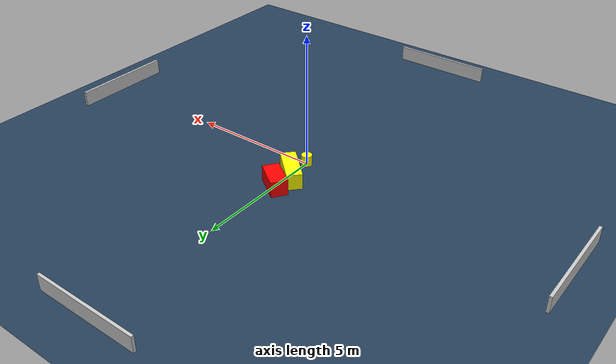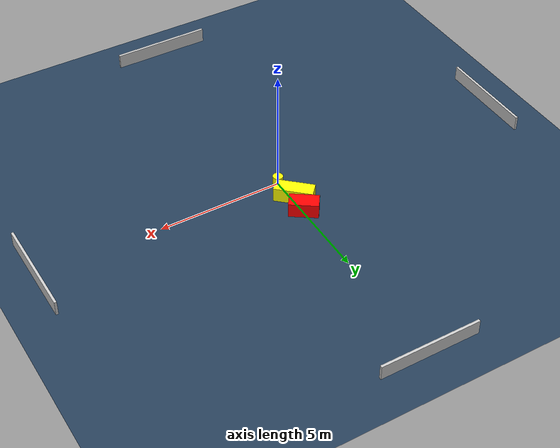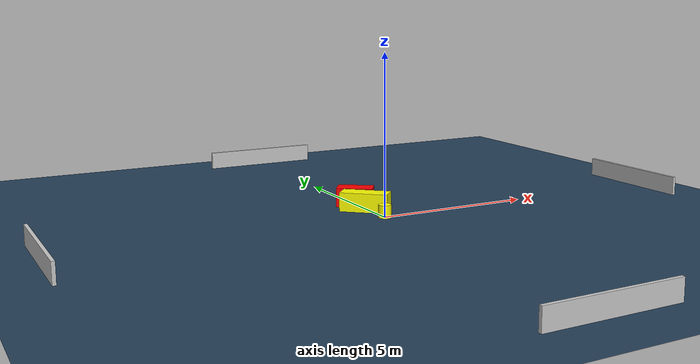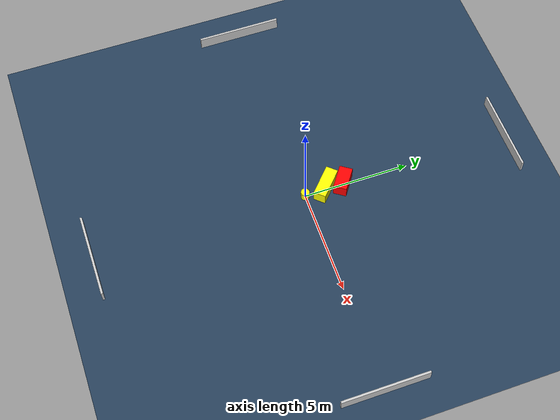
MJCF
<?xml version="1.0" ?>
<mujoco model="generated_environment">
  <option timestep="0.01" integrator="RK4" cone="elliptic"/>
  <default>
    <geom density="1"/>
  </default>
  <asset>
    <texture builtin="gradient" height="3072" name="skybox" rgb1="0.3 0.5 0.7" rgb2="0 0 0" type="skybox" width="512"/>
    <texture builtin="checker" height="300" name="groundplane" rgb1="0.2 0.3 0.4" rgb2="0.1 0.2 0.3" type="2d" width="300"/>
    <material name="groundplane" reflectance="0.2" texrepeat="5 5" texture="groundplane"/>
  </asset>
  <worldbody>
    <light dir="0 0 -1" directional="true" pos="0 0 1.5"/>
    <geom condim="3" friction="0.5 0.005 0.001" material="groundplane" name="floor" pos="0 0 0" size="0 0 0.05" type="plane"/>
    <body name="walls">
      <geom name="wall_1" condim="4" pos="-10.0 0.0 0.3" rgba="0.800000011920929 0.800000011920929 0.800000011920929 1.0" size="0.05 2.0 0.3" type="box"/>
      <geom name="wall_2" condim="4" pos="10.0 0.0 0.3" rgba="0.800000011920929 0.800000011920929 0.800000011920929 1.0" size="0.05 2.0 0.3" type="box"/>
      <geom name="wall_3" condim="4" pos="0.0 -10.0 0.3" rgba="0.800000011920929 0.800000011920929 0.800000011920929 1.0" size="2.0 0.05 0.3" type="box"/>
      <geom name="wall_4" condim="4" pos="0.0 10.0 0.3" rgba="0.800000011920929 0.800000011920929 0.800000011920929 1.0" size="2.0 0.05 0.3" type="box"/>
    </body>
    <body name="robot">
      <joint name="joint_x" type="slide" pos="0 0 0" axis="1 0 0"/>
      <joint name="joint_y" type="slide" pos="0 0 0" axis="0 1 0"/>
      <geom name="robot" type="cylinder" pos="0.0 0.0 0.2" size="0.2 0.2 0.0" mass="5.0" friction="1.0 0.005 0.0001" condim="4" rgba="1.0 1.0 0.0 1.0"/>
    </body>
    <body name="obstacle_1_movable">
      <geom name="obstacle_1_movable" condim="4" pos="-0.11105558687697109 1.0476643124485823 0.3" euler="0 0 47.487334871959504" friction="0.0 0.005 0.001" rgba="1.0 1.0 0.0 1.0" size="0.2867874588212342 0.7603657083099167 0.3" type="box" mass="0.1"/>
      <joint type="free"/>
    </body>
    <body name="obstacle_2_static">
      <geom name="obstacle_2_static" condim="4" pos="-0.04020210088994735 1.86066087642484 0.3" euler="0 0 325.1793665818889" friction="0.0 0.005 0.001" rgba="1.0 0.0 0.0 1.0" size="0.5765673927344724 0.30979374923167946 0.3" type="box"/>
    </body>
  </worldbody>
  <actuator>
    <motor name="actuator_x" joint="joint_x" gear="1" ctrlrange="-1 1"/>
    <motor name="actuator_y" joint="joint_y" gear="1" ctrlrange="-1 1"/>
  </actuator>
</mujoco>
